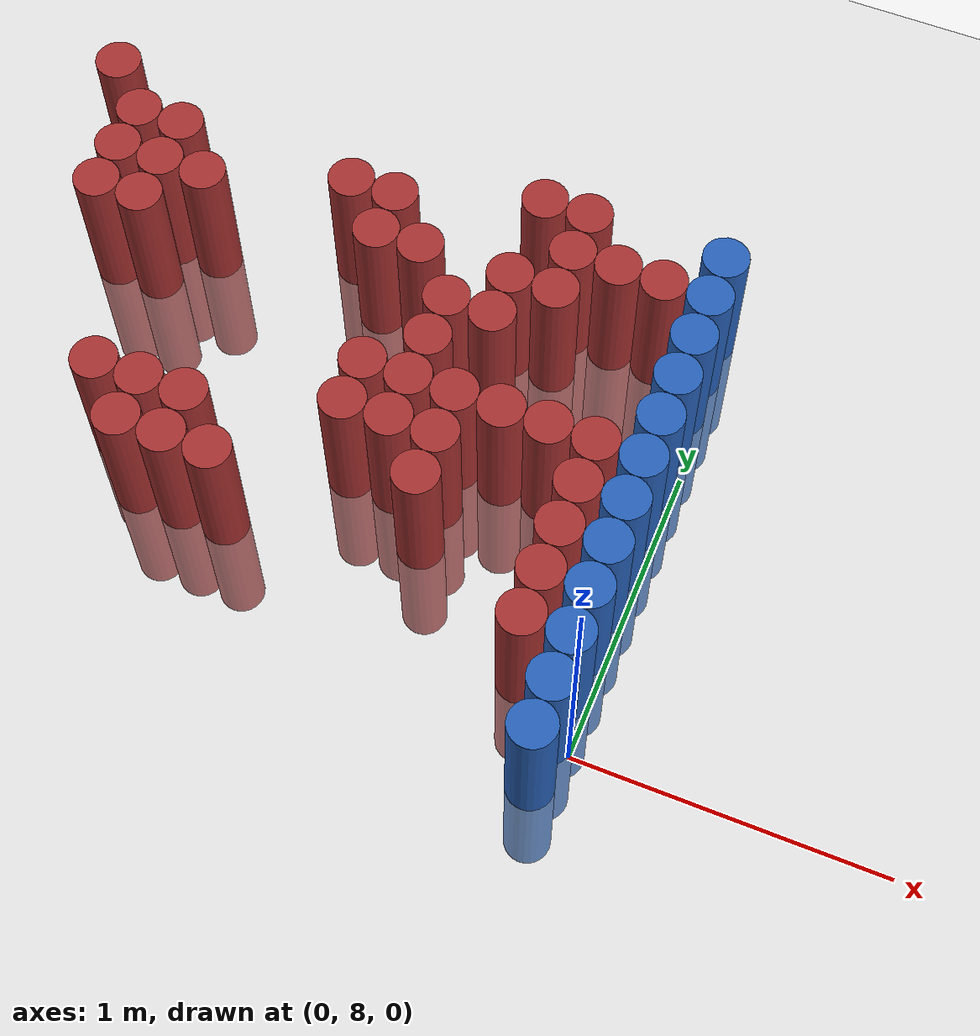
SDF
<sdf version="1.6">
 <world name="default">
  <model name="ground_plane">
   <static>1</static>
   <link name="link">
    <collision name="collision">
     <geometry><plane><normal>0 0 1</normal><size>100 100</size></plane></geometry>
     <surface><friction><ode><mu>100</mu><mu2>50</mu2></ode></friction></surface>
    </collision>
    <visual name="visual">
     <cast_shadows>0</cast_shadows>
     <geometry><plane><normal>0 0 1</normal><size>100 100</size></plane></geometry>
     <material>
      <script><uri>file://media/materials/scripts/gazebo.material</uri><name>Gazebo/Grey</name></script>
     </material>
    </visual>
   </link>
  </model>
  <model name="unit_cylinder_191">
   <static>1</static>
   <pose>-2.175000 9.525000 0.000000 0.000000 0.000000 0.000000</pose>
   <link name="link">
    <inertial>
     <mass>1</mass>
     <inertia><ixx>0.145833</ixx><ixy>0</ixy><ixz>0</ixz><iyy>0.145833</iyy><iyz>0</iyz><izz>0.125</izz></inertia>
    </inertial>
    <collision name="collision">
     <geometry><cylinder><radius>0.075000</radius><length>1</length></cylinder></geometry>
    </collision>
    <visual name="visual">
     <geometry><cylinder><radius>0.075000</radius><length>1</length></cylinder></geometry>
     <material>
      <ambient>0.648000 0.192000 0.192000 1</ambient>
      <diffuse>0.648000 0.192000 0.192000 1</diffuse>
     </material>
     <material>
      <script><name>Gazebo/Grey</name><uri>file://media/materials/scripts/gazebo.material</uri></script>
     </material>
    </visual>
   </link>
  </model>
  <model name="unit_cylinder_199">
   <static>1</static>
   <pose>-2.025000 9.075000 0.000000 0.000000 0.000000 0.000000</pose>
   <link name="link">
    <inertial>
     <mass>1</mass>
     <inertia><ixx>0.145833</ixx><ixy>0</ixy><ixz>0</ixz><iyy>0.145833</iyy><iyz>0</iyz><izz>0.125</izz></inertia>
    </inertial>
    <collision name="collision">
     <geometry><cylinder><radius>0.075000</radius><length>1</length></cylinder></geometry>
    </collision>
    <visual name="visual">
     <geometry><cylinder><radius>0.075000</radius><length>1</length></cylinder></geometry>
     <material>
      <ambient>0.648000 0.192000 0.192000 1</ambient>
      <diffuse>0.648000 0.192000 0.192000 1</diffuse>
     </material>
     <material>
      <script><name>Gazebo/Grey</name><uri>file://media/materials/scripts/gazebo.material</uri></script>
     </material>
    </visual>
   </link>
  </model>
  <model name="unit_cylinder_200">
   <static>1</static>
   <pose>-2.025000 9.225000 0.000000 0.000000 0.000000 0.000000</pose>
   <link name="link">
    <inertial>
     <mass>1</mass>
     <inertia><ixx>0.145833</ixx><ixy>0</ixy><ixz>0</ixz><iyy>0.145833</iyy><iyz>0</iyz><izz>0.125</izz></inertia>
    </inertial>
    <collision name="collision">
     <geometry><cylinder><radius>0.075000</radius><length>1</length></cylinder></geometry>
    </collision>
    <visual name="visual">
     <geometry><cylinder><radius>0.075000</radius><length>1</length></cylinder></geometry>
     <material>
      <ambient>0.648000 0.192000 0.192000 1</ambient>
      <diffuse>0.648000 0.192000 0.192000 1</diffuse>
     </material>
     <material>
      <script><name>Gazebo/Grey</name><uri>file://media/materials/scripts/gazebo.material</uri></script>
     </material>
    </visual>
   </link>
  </model>
  <model name="unit_cylinder_201">
   <static>1</static>
   <pose>-2.025000 9.375000 0.000000 0.000000 0.000000 0.000000</pose>
   <link name="link">
    <inertial>
     <mass>1</mass>
     <inertia><ixx>0.145833</ixx><ixy>0</ixy><ixz>0</ixz><iyy>0.145833</iyy><iyz>0</iyz><izz>0.125</izz></inertia>
    </inertial>
    <collision name="collision">
     <geometry><cylinder><radius>0.075000</radius><length>1</length></cylinder></geometry>
    </collision>
    <visual name="visual">
     <geometry><cylinder><radius>0.075000</radius><length>1</length></cylinder></geometry>
     <material>
      <ambient>0.648000 0.192000 0.192000 1</ambient>
      <diffuse>0.648000 0.192000 0.192000 1</diffuse>
     </material>
     <material>
      <script><name>Gazebo/Grey</name><uri>file://media/materials/scripts/gazebo.material</uri></script>
     </material>
    </visual>
   </link>
  </model>
  <model name="unit_cylinder_207">
   <static>1</static>
   <pose>-1.875000 9.075000 0.000000 0.000000 0.000000 0.000000</pose>
   <link name="link">
    <inertial>
     <mass>1</mass>
     <inertia><ixx>0.145833</ixx><ixy>0</ixy><ixz>0</ixz><iyy>0.145833</iyy><iyz>0</iyz><izz>0.125</izz></inertia>
    </inertial>
    <collision name="collision">
     <geometry><cylinder><radius>0.075000</radius><length>1</length></cylinder></geometry>
    </collision>
    <visual name="visual">
     <geometry><cylinder><radius>0.075000</radius><length>1</length></cylinder></geometry>
     <material>
      <ambient>0.648000 0.192000 0.192000 1</ambient>
      <diffuse>0.648000 0.192000 0.192000 1</diffuse>
     </material>
     <material>
      <script><name>Gazebo/Grey</name><uri>file://media/materials/scripts/gazebo.material</uri></script>
     </material>
    </visual>
   </link>
  </model>
  <model name="unit_cylinder_208">
   <static>1</static>
   <pose>-1.875000 9.225000 0.000000 0.000000 0.000000 0.000000</pose>
   <link name="link">
    <inertial>
     <mass>1</mass>
     <inertia><ixx>0.145833</ixx><ixy>0</ixy><ixz>0</ixz><iyy>0.145833</iyy><iyz>0</iyz><izz>0.125</izz></inertia>
    </inertial>
    <collision name="collision">
     <geometry><cylinder><radius>0.075000</radius><length>1</length></cylinder></geometry>
    </collision>
    <visual name="visual">
     <geometry><cylinder><radius>0.075000</radius><length>1</length></cylinder></geometry>
     <material>
      <ambient>0.648000 0.192000 0.192000 1</ambient>
      <diffuse>0.648000 0.192000 0.192000 1</diffuse>
     </material>
     <material>
      <script><name>Gazebo/Grey</name><uri>file://media/materials/scripts/gazebo.material</uri></script>
     </material>
    </visual>
   </link>
  </model>
  <model name="unit_cylinder_209">
   <static>1</static>
   <pose>-1.875000 9.375000 0.000000 0.000000 0.000000 0.000000</pose>
   <link name="link">
    <inertial>
     <mass>1</mass>
     <inertia><ixx>0.145833</ixx><ixy>0</ixy><ixz>0</ixz><iyy>0.145833</iyy><iyz>0</iyz><izz>0.125</izz></inertia>
    </inertial>
    <collision name="collision">
     <geometry><cylinder><radius>0.075000</radius><length>1</length></cylinder></geometry>
    </collision>
    <visual name="visual">
     <geometry><cylinder><radius>0.075000</radius><length>1</length></cylinder></geometry>
     <material>
      <ambient>0.648000 0.192000 0.192000 1</ambient>
      <diffuse>0.648000 0.192000 0.192000 1</diffuse>
     </material>
     <material>
      <script><name>Gazebo/Grey</name><uri>file://media/materials/scripts/gazebo.material</uri></script>
     </material>
    </visual>
   </link>
  </model>
  <model name="unit_cylinder_216">
   <static>1</static>
   <pose>-1.725000 8.475000 0.000000 0.000000 0.000000 0.000000</pose>
   <link name="link">
    <inertial>
     <mass>1</mass>
     <inertia><ixx>0.145833</ixx><ixy>0</ixy><ixz>0</ixz><iyy>0.145833</iyy><iyz>0</iyz><izz>0.125</izz></inertia>
    </inertial>
    <collision name="collision">
     <geometry><cylinder><radius>0.075000</radius><length>1</length></cylinder></geometry>
    </collision>
    <visual name="visual">
     <geometry><cylinder><radius>0.075000</radius><length>1</length></cylinder></geometry>
     <material>
      <ambient>0.648000 0.192000 0.192000 1</ambient>
      <diffuse>0.648000 0.192000 0.192000 1</diffuse>
     </material>
     <material>
      <script><name>Gazebo/Grey</name><uri>file://media/materials/scripts/gazebo.material</uri></script>
     </material>
    </visual>
   </link>
  </model>
  <model name="unit_cylinder_217">
   <static>1</static>
   <pose>-1.725000 9.225000 0.000000 0.000000 0.000000 0.000000</pose>
   <link name="link">
    <inertial>
     <mass>1</mass>
     <inertia><ixx>0.145833</ixx><ixy>0</ixy><ixz>0</ixz><iyy>0.145833</iyy><iyz>0</iyz><izz>0.125</izz></inertia>
    </inertial>
    <collision name="collision">
     <geometry><cylinder><radius>0.075000</radius><length>1</length></cylinder></geometry>
    </collision>
    <visual name="visual">
     <geometry><cylinder><radius>0.075000</radius><length>1</length></cylinder></geometry>
     <material>
      <ambient>0.648000 0.192000 0.192000 1</ambient>
      <diffuse>0.648000 0.192000 0.192000 1</diffuse>
     </material>
     <material>
      <script><name>Gazebo/Grey</name><uri>file://media/materials/scripts/gazebo.material</uri></script>
     </material>
    </visual>
   </link>
  </model>
  <model name="unit_cylinder_220">
   <static>1</static>
   <pose>-1.575000 8.325000 0.000000 0.000000 0.000000 0.000000</pose>
   <link name="link">
    <inertial>
     <mass>1</mass>
     <inertia><ixx>0.145833</ixx><ixy>0</ixy><ixz>0</ixz><iyy>0.145833</iyy><iyz>0</iyz><izz>0.125</izz></inertia>
    </inertial>
    <collision name="collision">
     <geometry><cylinder><radius>0.075000</radius><length>1</length></cylinder></geometry>
    </collision>
    <visual name="visual">
     <geometry><cylinder><radius>0.075000</radius><length>1</length></cylinder></geometry>
     <material>
      <ambient>0.648000 0.192000 0.192000 1</ambient>
      <diffuse>0.648000 0.192000 0.192000 1</diffuse>
     </material>
     <material>
      <script><name>Gazebo/Grey</name><uri>file://media/materials/scripts/gazebo.material</uri></script>
     </material>
    </visual>
   </link>
  </model>
  <model name="unit_cylinder_221">
   <static>1</static>
   <pose>-1.575000 8.475000 0.000000 0.000000 0.000000 0.000000</pose>
   <link name="link">
    <inertial>
     <mass>1</mass>
     <inertia><ixx>0.145833</ixx><ixy>0</ixy><ixz>0</ixz><iyy>0.145833</iyy><iyz>0</iyz><izz>0.125</izz></inertia>
    </inertial>
    <collision name="collision">
     <geometry><cylinder><radius>0.075000</radius><length>1</length></cylinder></geometry>
    </collision>
    <visual name="visual">
     <geometry><cylinder><radius>0.075000</radius><length>1</length></cylinder></geometry>
     <material>
      <ambient>0.648000 0.192000 0.192000 1</ambient>
      <diffuse>0.648000 0.192000 0.192000 1</diffuse>
     </material>
     <material>
      <script><name>Gazebo/Grey</name><uri>file://media/materials/scripts/gazebo.material</uri></script>
     </material>
    </visual>
   </link>
  </model>
  <model name="unit_cylinder_223">
   <static>1</static>
   <pose>-1.425000 8.325000 0.000000 0.000000 0.000000 0.000000</pose>
   <link name="link">
    <inertial>
     <mass>1</mass>
     <inertia><ixx>0.145833</ixx><ixy>0</ixy><ixz>0</ixz><iyy>0.145833</iyy><iyz>0</iyz><izz>0.125</izz></inertia>
    </inertial>
    <collision name="collision">
     <geometry><cylinder><radius>0.075000</radius><length>1</length></cylinder></geometry>
    </collision>
    <visual name="visual">
     <geometry><cylinder><radius>0.075000</radius><length>1</length></cylinder></geometry>
     <material>
      <ambient>0.648000 0.192000 0.192000 1</ambient>
      <diffuse>0.648000 0.192000 0.192000 1</diffuse>
     </material>
     <material>
      <script><name>Gazebo/Grey</name><uri>file://media/materials/scripts/gazebo.material</uri></script>
     </material>
    </visual>
   </link>
  </model>
  <model name="unit_cylinder_224">
   <static>1</static>
   <pose>-1.425000 8.475000 0.000000 0.000000 0.000000 0.000000</pose>
   <link name="link">
    <inertial>
     <mass>1</mass>
     <inertia><ixx>0.145833</ixx><ixy>0</ixy><ixz>0</ixz><iyy>0.145833</iyy><iyz>0</iyz><izz>0.125</izz></inertia>
    </inertial>
    <collision name="collision">
     <geometry><cylinder><radius>0.075000</radius><length>1</length></cylinder></geometry>
    </collision>
    <visual name="visual">
     <geometry><cylinder><radius>0.075000</radius><length>1</length></cylinder></geometry>
     <material>
      <ambient>0.648000 0.192000 0.192000 1</ambient>
      <diffuse>0.648000 0.192000 0.192000 1</diffuse>
     </material>
     <material>
      <script><name>Gazebo/Grey</name><uri>file://media/materials/scripts/gazebo.material</uri></script>
     </material>
    </visual>
   </link>
  </model>
  <model name="unit_cylinder_226">
   <static>1</static>
   <pose>-1.275000 8.325000 0.000000 0.000000 0.000000 0.000000</pose>
   <link name="link">
    <inertial>
     <mass>1</mass>
     <inertia><ixx>0.145833</ixx><ixy>0</ixy><ixz>0</ixz><iyy>0.145833</iyy><iyz>0</iyz><izz>0.125</izz></inertia>
    </inertial>
    <collision name="collision">
     <geometry><cylinder><radius>0.075000</radius><length>1</length></cylinder></geometry>
    </collision>
    <visual name="visual">
     <geometry><cylinder><radius>0.075000</radius><length>1</length></cylinder></geometry>
     <material>
      <ambient>0.648000 0.192000 0.192000 1</ambient>
      <diffuse>0.648000 0.192000 0.192000 1</diffuse>
     </material>
     <material>
      <script><name>Gazebo/Grey</name><uri>file://media/materials/scripts/gazebo.material</uri></script>
     </material>
    </visual>
   </link>
  </model>
  <model name="unit_cylinder_227">
   <static>1</static>
   <pose>-1.275000 9.375000 0.000000 0.000000 0.000000 0.000000</pose>
   <link name="link">
    <inertial>
     <mass>1</mass>
     <inertia><ixx>0.145833</ixx><ixy>0</ixy><ixz>0</ixz><iyy>0.145833</iyy><iyz>0</iyz><izz>0.125</izz></inertia>
    </inertial>
    <collision name="collision">
     <geometry><cylinder><radius>0.075000</radius><length>1</length></cylinder></geometry>
    </collision>
    <visual name="visual">
     <geometry><cylinder><radius>0.075000</radius><length>1</length></cylinder></geometry>
     <material>
      <ambient>0.648000 0.192000 0.192000 1</ambient>
      <diffuse>0.648000 0.192000 0.192000 1</diffuse>
     </material>
     <material>
      <script><name>Gazebo/Grey</name><uri>file://media/materials/scripts/gazebo.material</uri></script>
     </material>
    </visual>
   </link>
  </model>
  <model name="unit_cylinder_230">
   <static>1</static>
   <pose>-1.125000 9.225000 0.000000 0.000000 0.000000 0.000000</pose>
   <link name="link">
    <inertial>
     <mass>1</mass>
     <inertia><ixx>0.145833</ixx><ixy>0</ixy><ixz>0</ixz><iyy>0.145833</iyy><iyz>0</iyz><izz>0.125</izz></inertia>
    </inertial>
    <collision name="collision">
     <geometry><cylinder><radius>0.075000</radius><length>1</length></cylinder></geometry>
    </collision>
    <visual name="visual">
     <geometry><cylinder><radius>0.075000</radius><length>1</length></cylinder></geometry>
     <material>
      <ambient>0.648000 0.192000 0.192000 1</ambient>
      <diffuse>0.648000 0.192000 0.192000 1</diffuse>
     </material>
     <material>
      <script><name>Gazebo/Grey</name><uri>file://media/materials/scripts/gazebo.material</uri></script>
     </material>
    </visual>
   </link>
  </model>
  <model name="unit_cylinder_231">
   <static>1</static>
   <pose>-1.125000 9.375000 0.000000 0.000000 0.000000 0.000000</pose>
   <link name="link">
    <inertial>
     <mass>1</mass>
     <inertia><ixx>0.145833</ixx><ixy>0</ixy><ixz>0</ixz><iyy>0.145833</iyy><iyz>0</iyz><izz>0.125</izz></inertia>
    </inertial>
    <collision name="collision">
     <geometry><cylinder><radius>0.075000</radius><length>1</length></cylinder></geometry>
    </collision>
    <visual name="visual">
     <geometry><cylinder><radius>0.075000</radius><length>1</length></cylinder></geometry>
     <material>
      <ambient>0.648000 0.192000 0.192000 1</ambient>
      <diffuse>0.648000 0.192000 0.192000 1</diffuse>
     </material>
     <material>
      <script><name>Gazebo/Grey</name><uri>file://media/materials/scripts/gazebo.material</uri></script>
     </material>
    </visual>
   </link>
  </model>
  <model name="unit_cylinder_233">
   <static>1</static>
   <pose>-0.975000 8.625000 0.000000 0.000000 0.000000 0.000000</pose>
   <link name="link">
    <inertial>
     <mass>1</mass>
     <inertia><ixx>0.145833</ixx><ixy>0</ixy><ixz>0</ixz><iyy>0.145833</iyy><iyz>0</iyz><izz>0.125</izz></inertia>
    </inertial>
    <collision name="collision">
     <geometry><cylinder><radius>0.075000</radius><length>1</length></cylinder></geometry>
    </collision>
    <visual name="visual">
     <geometry><cylinder><radius>0.075000</radius><length>1</length></cylinder></geometry>
     <material>
      <ambient>0.648000 0.192000 0.192000 1</ambient>
      <diffuse>0.648000 0.192000 0.192000 1</diffuse>
     </material>
     <material>
      <script><name>Gazebo/Grey</name><uri>file://media/materials/scripts/gazebo.material</uri></script>
     </material>
    </visual>
   </link>
  </model>
  <model name="unit_cylinder_234">
   <static>1</static>
   <pose>-0.975000 8.775000 0.000000 0.000000 0.000000 0.000000</pose>
   <link name="link">
    <inertial>
     <mass>1</mass>
     <inertia><ixx>0.145833</ixx><ixy>0</ixy><ixz>0</ixz><iyy>0.145833</iyy><iyz>0</iyz><izz>0.125</izz></inertia>
    </inertial>
    <collision name="collision">
     <geometry><cylinder><radius>0.075000</radius><length>1</length></cylinder></geometry>
    </collision>
    <visual name="visual">
     <geometry><cylinder><radius>0.075000</radius><length>1</length></cylinder></geometry>
     <material>
      <ambient>0.648000 0.192000 0.192000 1</ambient>
      <diffuse>0.648000 0.192000 0.192000 1</diffuse>
     </material>
     <material>
      <script><name>Gazebo/Grey</name><uri>file://media/materials/scripts/gazebo.material</uri></script>
     </material>
    </visual>
   </link>
  </model>
  <model name="unit_cylinder_235">
   <static>1</static>
   <pose>-0.975000 9.225000 0.000000 0.000000 0.000000 0.000000</pose>
   <link name="link">
    <inertial>
     <mass>1</mass>
     <inertia><ixx>0.145833</ixx><ixy>0</ixy><ixz>0</ixz><iyy>0.145833</iyy><iyz>0</iyz><izz>0.125</izz></inertia>
    </inertial>
    <collision name="collision">
     <geometry><cylinder><radius>0.075000</radius><length>1</length></cylinder></geometry>
    </collision>
    <visual name="visual">
     <geometry><cylinder><radius>0.075000</radius><length>1</length></cylinder></geometry>
     <material>
      <ambient>0.648000 0.192000 0.192000 1</ambient>
      <diffuse>0.648000 0.192000 0.192000 1</diffuse>
     </material>
     <material>
      <script><name>Gazebo/Grey</name><uri>file://media/materials/scripts/gazebo.material</uri></script>
     </material>
    </visual>
   </link>
  </model>
  <model name="unit_cylinder_239">
   <static>1</static>
   <pose>-0.825000 8.625000 0.000000 0.000000 0.000000 0.000000</pose>
   <link name="link">
    <inertial>
     <mass>1</mass>
     <inertia><ixx>0.145833</ixx><ixy>0</ixy><ixz>0</ixz><iyy>0.145833</iyy><iyz>0</iyz><izz>0.125</izz></inertia>
    </inertial>
    <collision name="collision">
     <geometry><cylinder><radius>0.075000</radius><length>1</length></cylinder></geometry>
    </collision>
    <visual name="visual">
     <geometry><cylinder><radius>0.075000</radius><length>1</length></cylinder></geometry>
     <material>
      <ambient>0.648000 0.192000 0.192000 1</ambient>
      <diffuse>0.648000 0.192000 0.192000 1</diffuse>
     </material>
     <material>
      <script><name>Gazebo/Grey</name><uri>file://media/materials/scripts/gazebo.material</uri></script>
     </material>
    </visual>
   </link>
  </model>
  <model name="unit_cylinder_240">
   <static>1</static>
   <pose>-0.825000 8.775000 0.000000 0.000000 0.000000 0.000000</pose>
   <link name="link">
    <inertial>
     <mass>1</mass>
     <inertia><ixx>0.145833</ixx><ixy>0</ixy><ixz>0</ixz><iyy>0.145833</iyy><iyz>0</iyz><izz>0.125</izz></inertia>
    </inertial>
    <collision name="collision">
     <geometry><cylinder><radius>0.075000</radius><length>1</length></cylinder></geometry>
    </collision>
    <visual name="visual">
     <geometry><cylinder><radius>0.075000</radius><length>1</length></cylinder></geometry>
     <material>
      <ambient>0.648000 0.192000 0.192000 1</ambient>
      <diffuse>0.648000 0.192000 0.192000 1</diffuse>
     </material>
     <material>
      <script><name>Gazebo/Grey</name><uri>file://media/materials/scripts/gazebo.material</uri></script>
     </material>
    </visual>
   </link>
  </model>
  <model name="unit_cylinder_241">
   <static>1</static>
   <pose>-0.825000 8.925000 0.000000 0.000000 0.000000 0.000000</pose>
   <link name="link">
    <inertial>
     <mass>1</mass>
     <inertia><ixx>0.145833</ixx><ixy>0</ixy><ixz>0</ixz><iyy>0.145833</iyy><iyz>0</iyz><izz>0.125</izz></inertia>
    </inertial>
    <collision name="collision">
     <geometry><cylinder><radius>0.075000</radius><length>1</length></cylinder></geometry>
    </collision>
    <visual name="visual">
     <geometry><cylinder><radius>0.075000</radius><length>1</length></cylinder></geometry>
     <material>
      <ambient>0.648000 0.192000 0.192000 1</ambient>
      <diffuse>0.648000 0.192000 0.192000 1</diffuse>
     </material>
     <material>
      <script><name>Gazebo/Grey</name><uri>file://media/materials/scripts/gazebo.material</uri></script>
     </material>
    </visual>
   </link>
  </model>
  <model name="unit_cylinder_242">
   <static>1</static>
   <pose>-0.825000 9.075000 0.000000 0.000000 0.000000 0.000000</pose>
   <link name="link">
    <inertial>
     <mass>1</mass>
     <inertia><ixx>0.145833</ixx><ixy>0</ixy><ixz>0</ixz><iyy>0.145833</iyy><iyz>0</iyz><izz>0.125</izz></inertia>
    </inertial>
    <collision name="collision">
     <geometry><cylinder><radius>0.075000</radius><length>1</length></cylinder></geometry>
    </collision>
    <visual name="visual">
     <geometry><cylinder><radius>0.075000</radius><length>1</length></cylinder></geometry>
     <material>
      <ambient>0.648000 0.192000 0.192000 1</ambient>
      <diffuse>0.648000 0.192000 0.192000 1</diffuse>
     </material>
     <material>
      <script><name>Gazebo/Grey</name><uri>file://media/materials/scripts/gazebo.material</uri></script>
     </material>
    </visual>
   </link>
  </model>
  <model name="unit_cylinder_250">
   <static>1</static>
   <pose>-0.675000 8.475000 0.000000 0.000000 0.000000 0.000000</pose>
   <link name="link">
    <inertial>
     <mass>1</mass>
     <inertia><ixx>0.145833</ixx><ixy>0</ixy><ixz>0</ixz><iyy>0.145833</iyy><iyz>0</iyz><izz>0.125</izz></inertia>
    </inertial>
    <collision name="collision">
     <geometry><cylinder><radius>0.075000</radius><length>1</length></cylinder></geometry>
    </collision>
    <visual name="visual">
     <geometry><cylinder><radius>0.075000</radius><length>1</length></cylinder></geometry>
     <material>
      <ambient>0.648000 0.192000 0.192000 1</ambient>
      <diffuse>0.648000 0.192000 0.192000 1</diffuse>
     </material>
     <material>
      <script><name>Gazebo/Grey</name><uri>file://media/materials/scripts/gazebo.material</uri></script>
     </material>
    </visual>
   </link>
  </model>
  <model name="unit_cylinder_251">
   <static>1</static>
   <pose>-0.675000 8.625000 0.000000 0.000000 0.000000 0.000000</pose>
   <link name="link">
    <inertial>
     <mass>1</mass>
     <inertia><ixx>0.145833</ixx><ixy>0</ixy><ixz>0</ixz><iyy>0.145833</iyy><iyz>0</iyz><izz>0.125</izz></inertia>
    </inertial>
    <collision name="collision">
     <geometry><cylinder><radius>0.075000</radius><length>1</length></cylinder></geometry>
    </collision>
    <visual name="visual">
     <geometry><cylinder><radius>0.075000</radius><length>1</length></cylinder></geometry>
     <material>
      <ambient>0.648000 0.192000 0.192000 1</ambient>
      <diffuse>0.648000 0.192000 0.192000 1</diffuse>
     </material>
     <material>
      <script><name>Gazebo/Grey</name><uri>file://media/materials/scripts/gazebo.material</uri></script>
     </material>
    </visual>
   </link>
  </model>
  <model name="unit_cylinder_252">
   <static>1</static>
   <pose>-0.675000 8.775000 0.000000 0.000000 0.000000 0.000000</pose>
   <link name="link">
    <inertial>
     <mass>1</mass>
     <inertia><ixx>0.145833</ixx><ixy>0</ixy><ixz>0</ixz><iyy>0.145833</iyy><iyz>0</iyz><izz>0.125</izz></inertia>
    </inertial>
    <collision name="collision">
     <geometry><cylinder><radius>0.075000</radius><length>1</length></cylinder></geometry>
    </collision>
    <visual name="visual">
     <geometry><cylinder><radius>0.075000</radius><length>1</length></cylinder></geometry>
     <material>
      <ambient>0.648000 0.192000 0.192000 1</ambient>
      <diffuse>0.648000 0.192000 0.192000 1</diffuse>
     </material>
     <material>
      <script><name>Gazebo/Grey</name><uri>file://media/materials/scripts/gazebo.material</uri></script>
     </material>
    </visual>
   </link>
  </model>
  <model name="unit_cylinder_253">
   <static>1</static>
   <pose>-0.675000 9.075000 0.000000 0.000000 0.000000 0.000000</pose>
   <link name="link">
    <inertial>
     <mass>1</mass>
     <inertia><ixx>0.145833</ixx><ixy>0</ixy><ixz>0</ixz><iyy>0.145833</iyy><iyz>0</iyz><izz>0.125</izz></inertia>
    </inertial>
    <collision name="collision">
     <geometry><cylinder><radius>0.075000</radius><length>1</length></cylinder></geometry>
    </collision>
    <visual name="visual">
     <geometry><cylinder><radius>0.075000</radius><length>1</length></cylinder></geometry>
     <material>
      <ambient>0.648000 0.192000 0.192000 1</ambient>
      <diffuse>0.648000 0.192000 0.192000 1</diffuse>
     </material>
     <material>
      <script><name>Gazebo/Grey</name><uri>file://media/materials/scripts/gazebo.material</uri></script>
     </material>
    </visual>
   </link>
  </model>
  <model name="unit_cylinder_254">
   <static>1</static>
   <pose>-0.675000 9.225000 0.000000 0.000000 0.000000 0.000000</pose>
   <link name="link">
    <inertial>
     <mass>1</mass>
     <inertia><ixx>0.145833</ixx><ixy>0</ixy><ixz>0</ixz><iyy>0.145833</iyy><iyz>0</iyz><izz>0.125</izz></inertia>
    </inertial>
    <collision name="collision">
     <geometry><cylinder><radius>0.075000</radius><length>1</length></cylinder></geometry>
    </collision>
    <visual name="visual">
     <geometry><cylinder><radius>0.075000</radius><length>1</length></cylinder></geometry>
     <material>
      <ambient>0.648000 0.192000 0.192000 1</ambient>
      <diffuse>0.648000 0.192000 0.192000 1</diffuse>
     </material>
     <material>
      <script><name>Gazebo/Grey</name><uri>file://media/materials/scripts/gazebo.material</uri></script>
     </material>
    </visual>
   </link>
  </model>
  <model name="unit_cylinder_255">
   <static>1</static>
   <pose>-0.675000 9.525000 0.000000 0.000000 0.000000 0.000000</pose>
   <link name="link">
    <inertial>
     <mass>1</mass>
     <inertia><ixx>0.145833</ixx><ixy>0</ixy><ixz>0</ixz><iyy>0.145833</iyy><iyz>0</iyz><izz>0.125</izz></inertia>
    </inertial>
    <collision name="collision">
     <geometry><cylinder><radius>0.075000</radius><length>1</length></cylinder></geometry>
    </collision>
    <visual name="visual">
     <geometry><cylinder><radius>0.075000</radius><length>1</length></cylinder></geometry>
     <material>
      <ambient>0.648000 0.192000 0.192000 1</ambient>
      <diffuse>0.648000 0.192000 0.192000 1</diffuse>
     </material>
     <material>
      <script><name>Gazebo/Grey</name><uri>file://media/materials/scripts/gazebo.material</uri></script>
     </material>
    </visual>
   </link>
  </model>
  <model name="unit_cylinder_263">
   <static>1</static>
   <pose>-0.525000 8.775000 0.000000 0.000000 0.000000 0.000000</pose>
   <link name="link">
    <inertial>
     <mass>1</mass>
     <inertia><ixx>0.145833</ixx><ixy>0</ixy><ixz>0</ixz><iyy>0.145833</iyy><iyz>0</iyz><izz>0.125</izz></inertia>
    </inertial>
    <collision name="collision">
     <geometry><cylinder><radius>0.075000</radius><length>1</length></cylinder></geometry>
    </collision>
    <visual name="visual">
     <geometry><cylinder><radius>0.075000</radius><length>1</length></cylinder></geometry>
     <material>
      <ambient>0.648000 0.192000 0.192000 1</ambient>
      <diffuse>0.648000 0.192000 0.192000 1</diffuse>
     </material>
     <material>
      <script><name>Gazebo/Grey</name><uri>file://media/materials/scripts/gazebo.material</uri></script>
     </material>
    </visual>
   </link>
  </model>
  <model name="unit_cylinder_264">
   <static>1</static>
   <pose>-0.525000 9.225000 0.000000 0.000000 0.000000 0.000000</pose>
   <link name="link">
    <inertial>
     <mass>1</mass>
     <inertia><ixx>0.145833</ixx><ixy>0</ixy><ixz>0</ixz><iyy>0.145833</iyy><iyz>0</iyz><izz>0.125</izz></inertia>
    </inertial>
    <collision name="collision">
     <geometry><cylinder><radius>0.075000</radius><length>1</length></cylinder></geometry>
    </collision>
    <visual name="visual">
     <geometry><cylinder><radius>0.075000</radius><length>1</length></cylinder></geometry>
     <material>
      <ambient>0.648000 0.192000 0.192000 1</ambient>
      <diffuse>0.648000 0.192000 0.192000 1</diffuse>
     </material>
     <material>
      <script><name>Gazebo/Grey</name><uri>file://media/materials/scripts/gazebo.material</uri></script>
     </material>
    </visual>
   </link>
  </model>
  <model name="unit_cylinder_265">
   <static>1</static>
   <pose>-0.525000 9.375000 0.000000 0.000000 0.000000 0.000000</pose>
   <link name="link">
    <inertial>
     <mass>1</mass>
     <inertia><ixx>0.145833</ixx><ixy>0</ixy><ixz>0</ixz><iyy>0.145833</iyy><iyz>0</iyz><izz>0.125</izz></inertia>
    </inertial>
    <collision name="collision">
     <geometry><cylinder><radius>0.075000</radius><length>1</length></cylinder></geometry>
    </collision>
    <visual name="visual">
     <geometry><cylinder><radius>0.075000</radius><length>1</length></cylinder></geometry>
     <material>
      <ambient>0.648000 0.192000 0.192000 1</ambient>
      <diffuse>0.648000 0.192000 0.192000 1</diffuse>
     </material>
     <material>
      <script><name>Gazebo/Grey</name><uri>file://media/materials/scripts/gazebo.material</uri></script>
     </material>
    </visual>
   </link>
  </model>
  <model name="unit_cylinder_266">
   <static>1</static>
   <pose>-0.525000 9.525000 0.000000 0.000000 0.000000 0.000000</pose>
   <link name="link">
    <inertial>
     <mass>1</mass>
     <inertia><ixx>0.145833</ixx><ixy>0</ixy><ixz>0</ixz><iyy>0.145833</iyy><iyz>0</iyz><izz>0.125</izz></inertia>
    </inertial>
    <collision name="collision">
     <geometry><cylinder><radius>0.075000</radius><length>1</length></cylinder></geometry>
    </collision>
    <visual name="visual">
     <geometry><cylinder><radius>0.075000</radius><length>1</length></cylinder></geometry>
     <material>
      <ambient>0.648000 0.192000 0.192000 1</ambient>
      <diffuse>0.648000 0.192000 0.192000 1</diffuse>
     </material>
     <material>
      <script><name>Gazebo/Grey</name><uri>file://media/materials/scripts/gazebo.material</uri></script>
     </material>
    </visual>
   </link>
  </model>
  <model name="unit_cylinder_277">
   <static>1</static>
   <pose>-0.375000 8.775000 0.000000 0.000000 0.000000 0.000000</pose>
   <link name="link">
    <inertial>
     <mass>1</mass>
     <inertia><ixx>0.145833</ixx><ixy>0</ixy><ixz>0</ixz><iyy>0.145833</iyy><iyz>0</iyz><izz>0.125</izz></inertia>
    </inertial>
    <collision name="collision">
     <geometry><cylinder><radius>0.075000</radius><length>1</length></cylinder></geometry>
    </collision>
    <visual name="visual">
     <geometry><cylinder><radius>0.075000</radius><length>1</length></cylinder></geometry>
     <material>
      <ambient>0.648000 0.192000 0.192000 1</ambient>
      <diffuse>0.648000 0.192000 0.192000 1</diffuse>
     </material>
     <material>
      <script><name>Gazebo/Grey</name><uri>file://media/materials/scripts/gazebo.material</uri></script>
     </material>
    </visual>
   </link>
  </model>
  <model name="unit_cylinder_278">
   <static>1</static>
   <pose>-0.375000 9.375000 0.000000 0.000000 0.000000 0.000000</pose>
   <link name="link">
    <inertial>
     <mass>1</mass>
     <inertia><ixx>0.145833</ixx><ixy>0</ixy><ixz>0</ixz><iyy>0.145833</iyy><iyz>0</iyz><izz>0.125</izz></inertia>
    </inertial>
    <collision name="collision">
     <geometry><cylinder><radius>0.075000</radius><length>1</length></cylinder></geometry>
    </collision>
    <visual name="visual">
     <geometry><cylinder><radius>0.075000</radius><length>1</length></cylinder></geometry>
     <material>
      <ambient>0.648000 0.192000 0.192000 1</ambient>
      <diffuse>0.648000 0.192000 0.192000 1</diffuse>
     </material>
     <material>
      <script><name>Gazebo/Grey</name><uri>file://media/materials/scripts/gazebo.material</uri></script>
     </material>
    </visual>
   </link>
  </model>
  <model name="unit_cylinder_289">
   <static>1</static>
   <pose>-0.225000 8.175000 0.000000 0.000000 0.000000 0.000000</pose>
   <link name="link">
    <inertial>
     <mass>1</mass>
     <inertia><ixx>0.145833</ixx><ixy>0</ixy><ixz>0</ixz><iyy>0.145833</iyy><iyz>0</iyz><izz>0.125</izz></inertia>
    </inertial>
    <collision name="collision">
     <geometry><cylinder><radius>0.075000</radius><length>1</length></cylinder></geometry>
    </collision>
    <visual name="visual">
     <geometry><cylinder><radius>0.075000</radius><length>1</length></cylinder></geometry>
     <material>
      <ambient>0.648000 0.192000 0.192000 1</ambient>
      <diffuse>0.648000 0.192000 0.192000 1</diffuse>
     </material>
     <material>
      <script><name>Gazebo/Grey</name><uri>file://media/materials/scripts/gazebo.material</uri></script>
     </material>
    </visual>
   </link>
  </model>
  <model name="unit_cylinder_290">
   <static>1</static>
   <pose>-0.225000 8.325000 0.000000 0.000000 0.000000 0.000000</pose>
   <link name="link">
    <inertial>
     <mass>1</mass>
     <inertia><ixx>0.145833</ixx><ixy>0</ixy><ixz>0</ixz><iyy>0.145833</iyy><iyz>0</iyz><izz>0.125</izz></inertia>
    </inertial>
    <collision name="collision">
     <geometry><cylinder><radius>0.075000</radius><length>1</length></cylinder></geometry>
    </collision>
    <visual name="visual">
     <geometry><cylinder><radius>0.075000</radius><length>1</length></cylinder></geometry>
     <material>
      <ambient>0.648000 0.192000 0.192000 1</ambient>
      <diffuse>0.648000 0.192000 0.192000 1</diffuse>
     </material>
     <material>
      <script><name>Gazebo/Grey</name><uri>file://media/materials/scripts/gazebo.material</uri></script>
     </material>
    </visual>
   </link>
  </model>
  <model name="unit_cylinder_291">
   <static>1</static>
   <pose>-0.225000 8.475000 0.000000 0.000000 0.000000 0.000000</pose>
   <link name="link">
    <inertial>
     <mass>1</mass>
     <inertia><ixx>0.145833</ixx><ixy>0</ixy><ixz>0</ixz><iyy>0.145833</iyy><iyz>0</iyz><izz>0.125</izz></inertia>
    </inertial>
    <collision name="collision">
     <geometry><cylinder><radius>0.075000</radius><length>1</length></cylinder></geometry>
    </collision>
    <visual name="visual">
     <geometry><cylinder><radius>0.075000</radius><length>1</length></cylinder></geometry>
     <material>
      <ambient>0.648000 0.192000 0.192000 1</ambient>
      <diffuse>0.648000 0.192000 0.192000 1</diffuse>
     </material>
     <material>
      <script><name>Gazebo/Grey</name><uri>file://media/materials/scripts/gazebo.material</uri></script>
     </material>
    </visual>
   </link>
  </model>
  <model name="unit_cylinder_292">
   <static>1</static>
   <pose>-0.225000 8.625000 0.000000 0.000000 0.000000 0.000000</pose>
   <link name="link">
    <inertial>
     <mass>1</mass>
     <inertia><ixx>0.145833</ixx><ixy>0</ixy><ixz>0</ixz><iyy>0.145833</iyy><iyz>0</iyz><izz>0.125</izz></inertia>
    </inertial>
    <collision name="collision">
     <geometry><cylinder><radius>0.075000</radius><length>1</length></cylinder></geometry>
    </collision>
    <visual name="visual">
     <geometry><cylinder><radius>0.075000</radius><length>1</length></cylinder></geometry>
     <material>
      <ambient>0.648000 0.192000 0.192000 1</ambient>
      <diffuse>0.648000 0.192000 0.192000 1</diffuse>
     </material>
     <material>
      <script><name>Gazebo/Grey</name><uri>file://media/materials/scripts/gazebo.material</uri></script>
     </material>
    </visual>
   </link>
  </model>
  <model name="unit_cylinder_293">
   <static>1</static>
   <pose>-0.225000 8.775000 0.000000 0.000000 0.000000 0.000000</pose>
   <link name="link">
    <inertial>
     <mass>1</mass>
     <inertia><ixx>0.145833</ixx><ixy>0</ixy><ixz>0</ixz><iyy>0.145833</iyy><iyz>0</iyz><izz>0.125</izz></inertia>
    </inertial>
    <collision name="collision">
     <geometry><cylinder><radius>0.075000</radius><length>1</length></cylinder></geometry>
    </collision>
    <visual name="visual">
     <geometry><cylinder><radius>0.075000</radius><length>1</length></cylinder></geometry>
     <material>
      <ambient>0.648000 0.192000 0.192000 1</ambient>
      <diffuse>0.648000 0.192000 0.192000 1</diffuse>
     </material>
     <material>
      <script><name>Gazebo/Grey</name><uri>file://media/materials/scripts/gazebo.material</uri></script>
     </material>
    </visual>
   </link>
  </model>
  <model name="unit_cylinder_294">
   <static>1</static>
   <pose>-0.225000 9.375000 0.000000 0.000000 0.000000 0.000000</pose>
   <link name="link">
    <inertial>
     <mass>1</mass>
     <inertia><ixx>0.145833</ixx><ixy>0</ixy><ixz>0</ixz><iyy>0.145833</iyy><iyz>0</iyz><izz>0.125</izz></inertia>
    </inertial>
    <collision name="collision">
     <geometry><cylinder><radius>0.075000</radius><length>1</length></cylinder></geometry>
    </collision>
    <visual name="visual">
     <geometry><cylinder><radius>0.075000</radius><length>1</length></cylinder></geometry>
     <material>
      <ambient>0.648000 0.192000 0.192000 1</ambient>
      <diffuse>0.648000 0.192000 0.192000 1</diffuse>
     </material>
     <material>
      <script><name>Gazebo/Grey</name><uri>file://media/materials/scripts/gazebo.material</uri></script>
     </material>
    </visual>
   </link>
  </model>
  <model name="unit_cylinder_313">
   <static>1</static>
   <pose>-0.075000 7.875000 0.000000 0.000000 0.000000 0.000000</pose>
   <link name="link">
    <inertial>
     <mass>1</mass>
     <inertia><ixx>0.145833</ixx><ixy>0</ixy><ixz>0</ixz><iyy>0.145833</iyy><iyz>0</iyz><izz>0.125</izz></inertia>
    </inertial>
    <collision name="collision">
     <geometry><cylinder><radius>0.075000</radius><length>1</length></cylinder></geometry>
    </collision>
    <visual name="visual">
     <geometry><cylinder><radius>0.075000</radius><length>1</length></cylinder></geometry>
     <material>
      <ambient>0.152000 0.379000 0.720000 1</ambient>
      <diffuse>0.152000 0.379000 0.720000 1</diffuse>
     </material>
     <material>
      <script><name>Gazebo/Grey</name><uri>file://media/materials/scripts/gazebo.material</uri></script>
     </material>
    </visual>
   </link>
  </model>
  <model name="unit_cylinder_314">
   <static>1</static>
   <pose>-0.075000 8.025000 0.000000 0.000000 0.000000 0.000000</pose>
   <link name="link">
    <inertial>
     <mass>1</mass>
     <inertia><ixx>0.145833</ixx><ixy>0</ixy><ixz>0</ixz><iyy>0.145833</iyy><iyz>0</iyz><izz>0.125</izz></inertia>
    </inertial>
    <collision name="collision">
     <geometry><cylinder><radius>0.075000</radius><length>1</length></cylinder></geometry>
    </collision>
    <visual name="visual">
     <geometry><cylinder><radius>0.075000</radius><length>1</length></cylinder></geometry>
     <material>
      <ambient>0.152000 0.379000 0.720000 1</ambient>
      <diffuse>0.152000 0.379000 0.720000 1</diffuse>
     </material>
     <material>
      <script><name>Gazebo/Grey</name><uri>file://media/materials/scripts/gazebo.material</uri></script>
     </material>
    </visual>
   </link>
  </model>
  <model name="unit_cylinder_315">
   <static>1</static>
   <pose>-0.075000 8.175000 0.000000 0.000000 0.000000 0.000000</pose>
   <link name="link">
    <inertial>
     <mass>1</mass>
     <inertia><ixx>0.145833</ixx><ixy>0</ixy><ixz>0</ixz><iyy>0.145833</iyy><iyz>0</iyz><izz>0.125</izz></inertia>
    </inertial>
    <collision name="collision">
     <geometry><cylinder><radius>0.075000</radius><length>1</length></cylinder></geometry>
    </collision>
    <visual name="visual">
     <geometry><cylinder><radius>0.075000</radius><length>1</length></cylinder></geometry>
     <material>
      <ambient>0.152000 0.379000 0.720000 1</ambient>
      <diffuse>0.152000 0.379000 0.720000 1</diffuse>
     </material>
     <material>
      <script><name>Gazebo/Grey</name><uri>file://media/materials/scripts/gazebo.material</uri></script>
     </material>
    </visual>
   </link>
  </model>
  <model name="unit_cylinder_316">
   <static>1</static>
   <pose>-0.075000 8.325000 0.000000 0.000000 0.000000 0.000000</pose>
   <link name="link">
    <inertial>
     <mass>1</mass>
     <inertia><ixx>0.145833</ixx><ixy>0</ixy><ixz>0</ixz><iyy>0.145833</iyy><iyz>0</iyz><izz>0.125</izz></inertia>
    </inertial>
    <collision name="collision">
     <geometry><cylinder><radius>0.075000</radius><length>1</length></cylinder></geometry>
    </collision>
    <visual name="visual">
     <geometry><cylinder><radius>0.075000</radius><length>1</length></cylinder></geometry>
     <material>
      <ambient>0.152000 0.379000 0.720000 1</ambient>
      <diffuse>0.152000 0.379000 0.720000 1</diffuse>
     </material>
     <material>
      <script><name>Gazebo/Grey</name><uri>file://media/materials/scripts/gazebo.material</uri></script>
     </material>
    </visual>
   </link>
  </model>
  <model name="unit_cylinder_317">
   <static>1</static>
   <pose>-0.075000 8.475000 0.000000 0.000000 0.000000 0.000000</pose>
   <link name="link">
    <inertial>
     <mass>1</mass>
     <inertia><ixx>0.145833</ixx><ixy>0</ixy><ixz>0</ixz><iyy>0.145833</iyy><iyz>0</iyz><izz>0.125</izz></inertia>
    </inertial>
    <collision name="collision">
     <geometry><cylinder><radius>0.075000</radius><length>1</length></cylinder></geometry>
    </collision>
    <visual name="visual">
     <geometry><cylinder><radius>0.075000</radius><length>1</length></cylinder></geometry>
     <material>
      <ambient>0.152000 0.379000 0.720000 1</ambient>
      <diffuse>0.152000 0.379000 0.720000 1</diffuse>
     </material>
     <material>
      <script><name>Gazebo/Grey</name><uri>file://media/materials/scripts/gazebo.material</uri></script>
     </material>
    </visual>
   </link>
  </model>
  <model name="unit_cylinder_318">
   <static>1</static>
   <pose>-0.075000 8.625000 0.000000 0.000000 0.000000 0.000000</pose>
   <link name="link">
    <inertial>
     <mass>1</mass>
     <inertia><ixx>0.145833</ixx><ixy>0</ixy><ixz>0</ixz><iyy>0.145833</iyy><iyz>0</iyz><izz>0.125</izz></inertia>
    </inertial>
    <collision name="collision">
     <geometry><cylinder><radius>0.075000</radius><length>1</length></cylinder></geometry>
    </collision>
    <visual name="visual">
     <geometry><cylinder><radius>0.075000</radius><length>1</length></cylinder></geometry>
     <material>
      <ambient>0.152000 0.379000 0.720000 1</ambient>
      <diffuse>0.152000 0.379000 0.720000 1</diffuse>
     </material>
     <material>
      <script><name>Gazebo/Grey</name><uri>file://media/materials/scripts/gazebo.material</uri></script>
     </material>
    </visual>
   </link>
  </model>
  <model name="unit_cylinder_319">
   <static>1</static>
   <pose>-0.075000 8.775000 0.000000 0.000000 0.000000 0.000000</pose>
   <link name="link">
    <inertial>
     <mass>1</mass>
     <inertia><ixx>0.145833</ixx><ixy>0</ixy><ixz>0</ixz><iyy>0.145833</iyy><iyz>0</iyz><izz>0.125</izz></inertia>
    </inertial>
    <collision name="collision">
     <geometry><cylinder><radius>0.075000</radius><length>1</length></cylinder></geometry>
    </collision>
    <visual name="visual">
     <geometry><cylinder><radius>0.075000</radius><length>1</length></cylinder></geometry>
     <material>
      <ambient>0.152000 0.379000 0.720000 1</ambient>
      <diffuse>0.152000 0.379000 0.720000 1</diffuse>
     </material>
     <material>
      <script><name>Gazebo/Grey</name><uri>file://media/materials/scripts/gazebo.material</uri></script>
     </material>
    </visual>
   </link>
  </model>
  <model name="unit_cylinder_320">
   <static>1</static>
   <pose>-0.075000 8.925000 0.000000 0.000000 0.000000 0.000000</pose>
   <link name="link">
    <inertial>
     <mass>1</mass>
     <inertia><ixx>0.145833</ixx><ixy>0</ixy><ixz>0</ixz><iyy>0.145833</iyy><iyz>0</iyz><izz>0.125</izz></inertia>
    </inertial>
    <collision name="collision">
     <geometry><cylinder><radius>0.075000</radius><length>1</length></cylinder></geometry>
    </collision>
    <visual name="visual">
     <geometry><cylinder><radius>0.075000</radius><length>1</length></cylinder></geometry>
     <material>
      <ambient>0.152000 0.379000 0.720000 1</ambient>
      <diffuse>0.152000 0.379000 0.720000 1</diffuse>
     </material>
     <material>
      <script><name>Gazebo/Grey</name><uri>file://media/materials/scripts/gazebo.material</uri></script>
     </material>
    </visual>
   </link>
  </model>
  <model name="unit_cylinder_321">
   <static>1</static>
   <pose>-0.075000 9.075000 0.000000 0.000000 0.000000 0.000000</pose>
   <link name="link">
    <inertial>
     <mass>1</mass>
     <inertia><ixx>0.145833</ixx><ixy>0</ixy><ixz>0</ixz><iyy>0.145833</iyy><iyz>0</iyz><izz>0.125</izz></inertia>
    </inertial>
    <collision name="collision">
     <geometry><cylinder><radius>0.075000</radius><length>1</length></cylinder></geometry>
    </collision>
    <visual name="visual">
     <geometry><cylinder><radius>0.075000</radius><length>1</length></cylinder></geometry>
     <material>
      <ambient>0.152000 0.379000 0.720000 1</ambient>
      <diffuse>0.152000 0.379000 0.720000 1</diffuse>
     </material>
     <material>
      <script><name>Gazebo/Grey</name><uri>file://media/materials/scripts/gazebo.material</uri></script>
     </material>
    </visual>
   </link>
  </model>
  <model name="unit_cylinder_322">
   <static>1</static>
   <pose>-0.075000 9.225000 0.000000 0.000000 0.000000 0.000000</pose>
   <link name="link">
    <inertial>
     <mass>1</mass>
     <inertia><ixx>0.145833</ixx><ixy>0</ixy><ixz>0</ixz><iyy>0.145833</iyy><iyz>0</iyz><izz>0.125</izz></inertia>
    </inertial>
    <collision name="collision">
     <geometry><cylinder><radius>0.075000</radius><length>1</length></cylinder></geometry>
    </collision>
    <visual name="visual">
     <geometry><cylinder><radius>0.075000</radius><length>1</length></cylinder></geometry>
     <material>
      <ambient>0.152000 0.379000 0.720000 1</ambient>
      <diffuse>0.152000 0.379000 0.720000 1</diffuse>
     </material>
     <material>
      <script><name>Gazebo/Grey</name><uri>file://media/materials/scripts/gazebo.material</uri></script>
     </material>
    </visual>
   </link>
  </model>
  <model name="unit_cylinder_323">
   <static>1</static>
   <pose>-0.075000 9.375000 0.000000 0.000000 0.000000 0.000000</pose>
   <link name="link">
    <inertial>
     <mass>1</mass>
     <inertia><ixx>0.145833</ixx><ixy>0</ixy><ixz>0</ixz><iyy>0.145833</iyy><iyz>0</iyz><izz>0.125</izz></inertia>
    </inertial>
    <collision name="collision">
     <geometry><cylinder><radius>0.075000</radius><length>1</length></cylinder></geometry>
    </collision>
    <visual name="visual">
     <geometry><cylinder><radius>0.075000</radius><length>1</length></cylinder></geometry>
     <material>
      <ambient>0.152000 0.379000 0.720000 1</ambient>
      <diffuse>0.152000 0.379000 0.720000 1</diffuse>
     </material>
     <material>
      <script><name>Gazebo/Grey</name><uri>file://media/materials/scripts/gazebo.material</uri></script>
     </material>
    </visual>
   </link>
  </model>
  <model name="unit_cylinder_324">
   <static>1</static>
   <pose>-0.075000 9.525000 0.000000 0.000000 0.000000 0.000000</pose>
   <link name="link">
    <inertial>
     <mass>1</mass>
     <inertia><ixx>0.145833</ixx><ixy>0</ixy><ixz>0</ixz><iyy>0.145833</iyy><iyz>0</iyz><izz>0.125</izz></inertia>
    </inertial>
    <collision name="collision">
     <geometry><cylinder><radius>0.075000</radius><length>1</length></cylinder></geometry>
    </collision>
    <visual name="visual">
     <geometry><cylinder><radius>0.075000</radius><length>1</length></cylinder></geometry>
     <material>
      <ambient>0.152000 0.379000 0.720000 1</ambient>
      <diffuse>0.152000 0.379000 0.720000 1</diffuse>
     </material>
     <material>
      <script><name>Gazebo/Grey</name><uri>file://media/materials/scripts/gazebo.material</uri></script>
     </material>
    </visual>
   </link>
  </model>
 </world>
</sdf>
